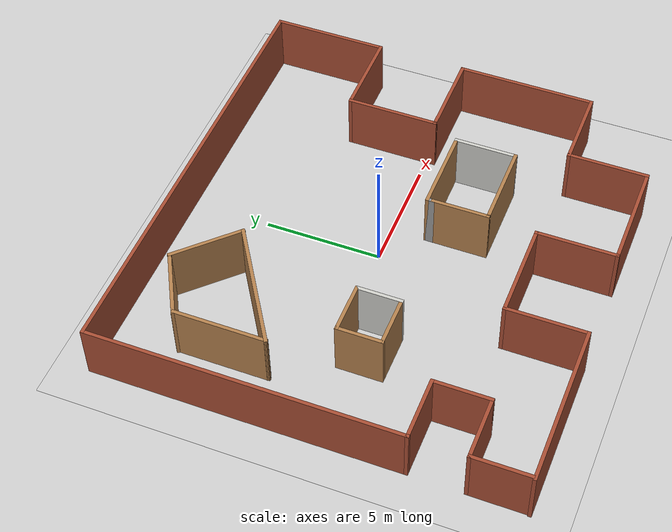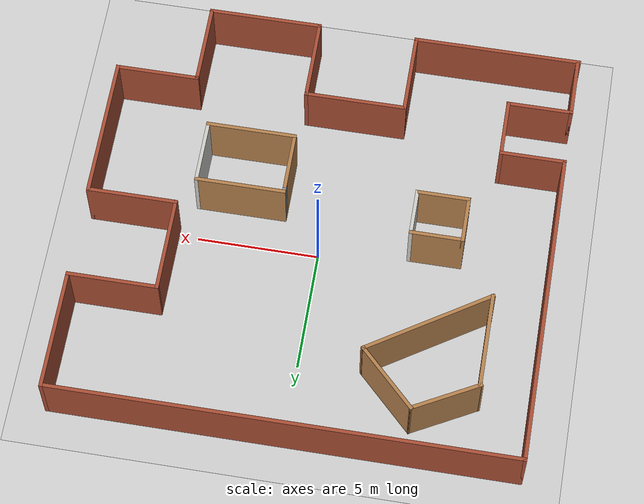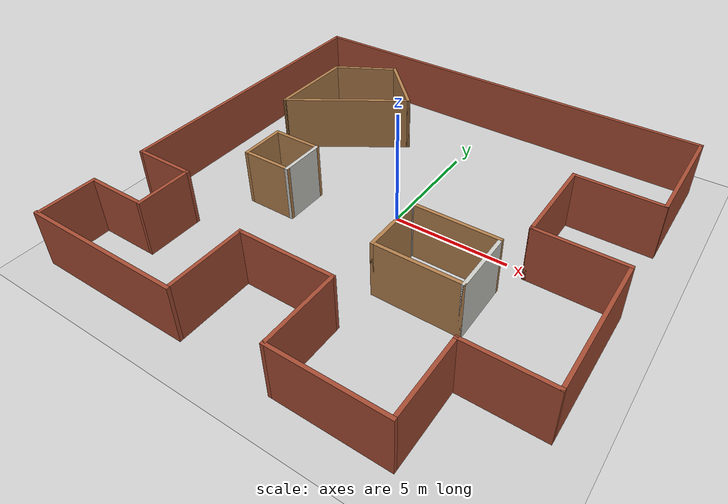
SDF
<sdf version="1.6">
 <world name="default">
  <light name="sun" type="directional">
   <pose>0 0 10 0 -0 0</pose>
   <diffuse>0.8 0.8 0.8 1</diffuse>
   <specular>0.2 0.2 0.2 1</specular>
   <attenuation>
    <range>1000</range>
    <constant>0.9</constant>
    <linear>0.01</linear>
    <quadratic>0.001</quadratic>
   </attenuation>
   <direction>-0.5 0.1 -0.9</direction>
  </light>
  <model name="ground_plane">
   <static>1</static>
   <link name="link">
    <collision name="collision">
     <geometry><plane><normal>0 0 1</normal><size>100 100</size></plane></geometry>
     <surface>
      <contact><collide_bitmask>65535</collide_bitmask></contact>
      <friction><ode><mu>100</mu><mu2>50</mu2></ode></friction>
     </surface>
    </collision>
    <visual name="visual">
     <cast_shadows>0</cast_shadows>
     <geometry><plane><normal>0 0 1</normal><size>100 100</size></plane></geometry>
     <material>
      <script><uri>file://media/materials/scripts/gazebo.material</uri><name>Gazebo/Grey</name></script>
     </material>
    </visual>
   </link>
  </model>
  <gravity>0 0 -9.8</gravity>
  <magnetic_field>6e-06 2.3e-05 -4.2e-05</magnetic_field>
  <atmosphere type="adiabatic"/>
  <physics name="default_physics" default="0" type="ode">
   <max_step_size>0.001</max_step_size>
   <real_time_factor>1</real_time_factor>
   <real_time_update_rate>1000</real_time_update_rate>
  </physics>
  <scene><ambient>0.4 0.4 0.4 1</ambient><background>0.7 0.7 0.7 1</background><shadows>1</shadows></scene>
  <spherical_coordinates>
   <surface_model>EARTH_WGS84</surface_model>
   <latitude_deg>0</latitude_deg>
   <longitude_deg>0</longitude_deg>
   <elevation>0</elevation>
   <heading_deg>0</heading_deg>
  </spherical_coordinates>
  <model name="Untitled">
   <pose>0.012255 -0.548863 0 0 -0 0</pose>
   <link name="Wall_0">
    <collision name="Wall_0_Collision">
     <geometry><box><size>2.5 0.15 2.5</size></box></geometry>
     <pose>0 0 1.25 0 -0 0</pose>
    </collision>
    <visual name="Wall_0_Visual">
     <pose>0 0 1.25 0 -0 0</pose>
     <geometry><box><size>2.5 0.15 2.5</size></box></geometry>
     <material>
      <script><uri>file://media/materials/scripts/gazebo.material</uri><name>Gazebo/Bricks</name></script>
      <ambient>1 1 1 1</ambient>
     </material>
     <meta><layer>0</layer></meta>
    </visual>
    <pose>-9.4 -7.675 0 0 0 -1.5708</pose>
   </link>
   <link name="Wall_10">
    <collision name="Wall_10_Collision">
     <geometry><box><size>4 0.15 2.5</size></box></geometry>
     <pose>0 0 1.25 0 -0 0</pose>
    </collision>
    <visual name="Wall_10_Visual">
     <pose>0 0 1.25 0 -0 0</pose>
     <geometry><box><size>4 0.15 2.5</size></box></geometry>
     <material>
      <script><uri>file://media/materials/scripts/gazebo.material</uri><name>Gazebo/Bricks</name></script>
      <ambient>1 1 1 1</ambient>
     </material>
     <meta><layer>0</layer></meta>
    </visual>
    <pose>5.85 2.175 0 0 0 -1.5708</pose>
   </link>
   <link name="Wall_11">
    <collision name="Wall_11_Collision">
     <geometry><box><size>3.75 0.15 2.5</size></box></geometry>
     <pose>0 0 1.25 0 -0 0</pose>
    </collision>
    <visual name="Wall_11_Visual">
     <pose>0 0 1.25 0 -0 0</pose>
     <geometry><box><size>3.75 0.15 2.5</size></box></geometry>
     <material>
      <script><uri>file://media/materials/scripts/gazebo.material</uri><name>Gazebo/Bricks</name></script>
      <ambient>1 1 1 1</ambient>
     </material>
     <meta><layer>0</layer></meta>
    </visual>
    <pose>7.65 0.25 0 0 -0 0</pose>
   </link>
   <link name="Wall_12">
    <collision name="Wall_12_Collision">
     <geometry><box><size>6 0.15 2.5</size></box></geometry>
     <pose>0 0 1.25 0 -0 0</pose>
    </collision>
    <visual name="Wall_12_Visual">
     <pose>0 0 1.25 0 -0 0</pose>
     <geometry><box><size>6 0.15 2.5</size></box></geometry>
     <material>
      <script><uri>file://media/materials/scripts/gazebo.material</uri><name>Gazebo/Bricks</name></script>
      <ambient>1 1 1 1</ambient>
     </material>
     <meta><layer>0</layer></meta>
    </visual>
    <pose>9.45 -2.675 0 0 0 -1.5708</pose>
   </link>
   <link name="Wall_13">
    <collision name="Wall_13_Collision">
     <geometry><box><size>3.5 0.15 2.5</size></box></geometry>
     <pose>0 0 1.25 0 -0 0</pose>
    </collision>
    <visual name="Wall_13_Visual">
     <pose>0 0 1.25 0 -0 0</pose>
     <geometry><box><size>3.5 0.15 2.5</size></box></geometry>
     <material>
      <script><uri>file://media/materials/scripts/gazebo.material</uri><name>Gazebo/Bricks</name></script>
      <ambient>1 1 1 1</ambient>
     </material>
     <meta><layer>0</layer></meta>
    </visual>
    <pose>7.775 -5.6 0 0 -0 3.14159</pose>
   </link>
   <link name="Wall_14">
    <collision name="Wall_14_Collision">
     <geometry><box><size>3.5 0.15 2.5</size></box></geometry>
     <pose>0 0 1.25 0 -0 0</pose>
    </collision>
    <visual name="Wall_14_Visual">
     <pose>0 0 1.25 0 -0 0</pose>
     <geometry><box><size>3.5 0.15 2.5</size></box></geometry>
     <material>
      <script><uri>file://media/materials/scripts/gazebo.material</uri><name>Gazebo/Bricks</name></script>
      <ambient>1 1 1 1</ambient>
     </material>
     <meta><layer>0</layer></meta>
    </visual>
    <pose>6.1 -7.275 0 0 0 -1.5708</pose>
   </link>
   <link name="Wall_15">
    <collision name="Wall_15_Collision">
     <geometry><box><size>4.75 0.15 2.5</size></box></geometry>
     <pose>0 0 1.25 0 -0 0</pose>
    </collision>
    <visual name="Wall_15_Visual">
     <pose>0 0 1.25 0 -0 0</pose>
     <geometry><box><size>4.75 0.15 2.5</size></box></geometry>
     <material>
      <script><uri>file://media/materials/scripts/gazebo.material</uri><name>Gazebo/Bricks</name></script>
      <ambient>1 1 1 1</ambient>
     </material>
     <meta><layer>0</layer></meta>
    </visual>
    <pose>3.8 -8.95 0 0 -0 3.14159</pose>
   </link>
   <link name="Wall_16">
    <collision name="Wall_16_Collision">
     <geometry><box><size>3.5 0.15 2.5</size></box></geometry>
     <pose>0 0 1.25 0 -0 0</pose>
    </collision>
    <visual name="Wall_16_Visual">
     <pose>0 0 1.25 0 -0 0</pose>
     <geometry><box><size>3.5 0.15 2.5</size></box></geometry>
     <material>
      <script><uri>file://media/materials/scripts/gazebo.material</uri><name>Gazebo/Bricks</name></script>
      <ambient>1 1 1 1</ambient>
     </material>
     <meta><layer>0</layer></meta>
    </visual>
    <pose>1.5 -7.275 0 0 -0 1.5708</pose>
   </link>
   <link name="Wall_17">
    <collision name="Wall_17_Collision">
     <geometry><box><size>4.25 0.15 2.5</size></box></geometry>
     <pose>0 0 1.25 0 -0 0</pose>
    </collision>
    <visual name="Wall_17_Visual">
     <pose>0 0 1.25 0 -0 0</pose>
     <geometry><box><size>4.25 0.15 2.5</size></box></geometry>
     <material>
      <script><uri>file://media/materials/scripts/gazebo.material</uri><name>Gazebo/Bricks</name></script>
      <ambient>1 1 1 1</ambient>
     </material>
     <meta><layer>0</layer></meta>
    </visual>
    <pose>-0.55 -5.6 0 0 -0 3.14159</pose>
   </link>
   <link name="Wall_18">
    <collision name="Wall_18_Collision">
     <geometry><box><size>3.5 0.15 2.5</size></box></geometry>
     <pose>0 0 1.25 0 -0 0</pose>
    </collision>
    <visual name="Wall_18_Visual">
     <pose>0 0 1.25 0 -0 0</pose>
     <geometry><box><size>3.5 0.15 2.5</size></box></geometry>
     <material>
      <script><uri>file://media/materials/scripts/gazebo.material</uri><name>Gazebo/Bricks</name></script>
      <ambient>1 1 1 1</ambient>
     </material>
     <meta><layer>0</layer></meta>
    </visual>
    <pose>-2.6 -7.275 0 0 0 -1.5708</pose>
   </link>
   <link name="Wall_19">
    <collision name="Wall_19_Collision">
     <geometry><box><size>7 0.15 2.5</size></box></geometry>
     <pose>0 0 1.25 0 -0 0</pose>
    </collision>
    <visual name="Wall_19_Visual">
     <pose>0 0 1.25 0 -0 0</pose>
     <geometry><box><size>7 0.15 2.5</size></box></geometry>
     <material>
      <script><uri>file://media/materials/scripts/gazebo.material</uri><name>Gazebo/Bricks</name></script>
      <ambient>1 1 1 1</ambient>
     </material>
     <meta><layer>0</layer></meta>
    </visual>
    <pose>-6.025 -8.95 0 0 -0 3.14159</pose>
   </link>
   <link name="Wall_21">
    <collision name="Wall_21_Collision">
     <geometry><box><size>3.04662 0.15 2.5</size></box></geometry>
     <pose>0 0 1.25 0 -0 0</pose>
    </collision>
    <visual name="Wall_21_Visual">
     <pose>0 0 1.25 0 -0 0</pose>
     <geometry><box><size>3.04662 0.15 2.5</size></box></geometry>
     <material>
      <script><uri>file://media/materials/scripts/gazebo.material</uri><name>Gazebo/Wood</name></script>
      <ambient>1 1 1 1</ambient>
     </material>
     <meta><layer>0</layer></meta>
    </visual>
    <pose>-6.06708 6.86252 0 0 -0 0.498069</pose>
   </link>
   <link name="Wall_22">
    <collision name="Wall_22_Collision">
     <geometry><box><size>3.25 0.15 2.5</size></box></geometry>
     <pose>0 0 1.25 0 -0 0</pose>
    </collision>
    <visual name="Wall_22_Visual">
     <pose>0 0 1.25 0 -0 0</pose>
     <geometry><box><size>3.25 0.15 2.5</size></box></geometry>
     <material>
      <script><uri>file://media/materials/scripts/gazebo.material</uri><name>Gazebo/Wood</name></script>
      <ambient>1 1 1 1</ambient>
     </material>
     <meta><layer>0</layer></meta>
    </visual>
    <pose>-3.69871 6.45841 0 0 0 -0.785398</pose>
   </link>
   <link name="Wall_23">
    <collision name="Wall_23_Collision">
     <geometry><box><size>5.74973 0.15 2.5</size></box></geometry>
     <pose>0 0 1.25 0 -0 0</pose>
    </collision>
    <visual name="Wall_23_Visual">
     <pose>0 0 1.25 0 -0 0</pose>
     <geometry><box><size>5.74973 0.15 2.5</size></box></geometry>
     <material>
      <script><uri>file://media/materials/scripts/gazebo.material</uri><name>Gazebo/Wood</name></script>
      <ambient>1 1 1 1</ambient>
     </material>
     <meta><layer>0</layer></meta>
    </visual>
    <pose>-4.95348 3.84151 0 0 0 -2.56735</pose>
   </link>
   <link name="Wall_24">
    <collision name="Wall_24_Collision">
     <geometry><box><size>4 0.15 2.5</size></box></geometry>
     <pose>0 0 1.25 0 -0 0</pose>
    </collision>
    <visual name="Wall_24_Visual">
     <pose>0 0 1.25 0 -0 0</pose>
     <geometry><box><size>4 0.15 2.5</size></box></geometry>
     <material>
      <script><uri>file://media/materials/scripts/gazebo.material</uri><name>Gazebo/Wood</name></script>
      <ambient>1 1 1 1</ambient>
     </material>
     <meta><layer>0</layer></meta>
    </visual>
    <pose>-7.30425 4.24562 0 0 -0 1.5708</pose>
   </link>
   <link name="Wall_26">
    <collision name="Wall_26_Collision">
     <geometry><box><size>2.5 0.15 2.5</size></box></geometry>
     <pose>0 0 1.25 0 -0 0</pose>
    </collision>
    <visual name="Wall_26_Visual">
     <pose>0 0 1.25 0 -0 0</pose>
     <geometry><box><size>2.5 0.15 2.5</size></box></geometry>
     <material>
      <script><uri>file://media/materials/scripts/gazebo.material</uri><name>Gazebo/Wood</name></script>
      <ambient>1 1 1 1</ambient>
     </material>
     <meta><layer>0</layer></meta>
    </visual>
    <pose>1.63115 -2.35674 0 0 0 -1.5708</pose>
   </link>
   <link name="Wall_27">
    <collision name="Wall_27_Collision">
     <geometry><box><size>3.75 0.15 2.5</size></box></geometry>
     <pose>0 0 1.25 0 -0 0</pose>
    </collision>
    <visual name="Wall_27_Visual">
     <pose>0 0 1.25 0 -0 0</pose>
     <geometry><box><size>3.75 0.15 2.5</size></box></geometry>
     <material>
      <script><uri>file://media/materials/scripts/gazebo.material</uri><name>Gazebo/Wood</name></script>
      <ambient>1 1 1 1</ambient>
     </material>
     <meta><layer>0</layer></meta>
    </visual>
    <pose>3.43115 -3.53174 0 0 -0 0</pose>
   </link>
   <link name="Wall_28">
    <collision name="Wall_28_Collision">
     <geometry><box><size>2.75 0.15 2.5</size></box></geometry>
     <pose>0 0 1.25 0 -0 0</pose>
    </collision>
    <visual name="Wall_28_Visual">
     <pose>0 0 1.25 0 -0 0</pose>
     <geometry><box><size>2.75 0.15 2.5</size></box></geometry>
     <material>
      <script><uri>file://media/materials/scripts/gazebo.material</uri><name>Gazebo/CeilingTiled</name></script>
      <ambient>1 1 1 1</ambient>
     </material>
     <meta><layer>0</layer></meta>
    </visual>
    <pose>5.23115 -2.23174 0 0 -0 1.5708</pose>
   </link>
   <link name="Wall_29">
    <collision name="Wall_29_Collision">
     <geometry><box><size>3.75 0.15 2.5</size></box></geometry>
     <pose>0 0 1.25 0 -0 0</pose>
    </collision>
    <visual name="Wall_29_Visual">
     <pose>0 0 1.25 0 -0 0</pose>
     <geometry><box><size>3.75 0.15 2.5</size></box></geometry>
     <material>
      <script><uri>file://media/materials/scripts/gazebo.material</uri><name>Gazebo/Wood</name></script>
      <ambient>1 1 1 1</ambient>
     </material>
     <meta><layer>0</layer></meta>
    </visual>
    <pose>3.43115 -0.931741 0 0 -0 3.14159</pose>
   </link>
   <link name="Wall_3">
    <collision name="Wall_3_Collision">
     <geometry><box><size>2.75 0.15 2.5</size></box></geometry>
     <pose>0 0 1.25 0 -0 0</pose>
    </collision>
    <visual name="Wall_3_Visual">
     <pose>0 0 1.25 0 -0 0</pose>
     <geometry><box><size>2.75 0.15 2.5</size></box></geometry>
     <material>
      <script><uri>file://media/materials/scripts/gazebo.material</uri><name>Gazebo/Bricks</name></script>
      <ambient>1 1 1 1</ambient>
     </material>
     <meta><layer>0</layer></meta>
    </visual>
    <pose>-8.1 -6.5 0 0 -0 0</pose>
   </link>
   <link name="Wall_30">
    <collision name="Wall_30_Collision">
     <geometry><box><size>0.4 0.15 2.5</size></box></geometry>
     <pose>0 0 1.25 0 -0 0</pose>
    </collision>
    <visual name="Wall_30_Visual">
     <pose>0 0 1.25 0 -0 0</pose>
     <geometry><box><size>0.4 0.15 2.5</size></box></geometry>
     <material>
      <script><uri>file://media/materials/scripts/gazebo.material</uri><name>Gazebo/Grey</name></script>
      <ambient>1 1 1 1</ambient>
     </material>
     <meta><layer>0</layer></meta>
    </visual>
    <pose>1.63115 -1.05674 0 0 0 -1.5708</pose>
   </link>
   <link name="Wall_32">
    <collision name="Wall_32_Collision">
     <geometry><box><size>2 0.15 2.5</size></box></geometry>
     <pose>0 0 1.25 0 -0 0</pose>
    </collision>
    <visual name="Wall_32_Visual">
     <pose>0 0 1.25 0 -0 0</pose>
     <geometry><box><size>2 0.15 2.5</size></box></geometry>
     <material>
      <script><uri>file://media/materials/scripts/gazebo.material</uri><name>Gazebo/Wood</name></script>
      <ambient>1 1 1 1</ambient>
     </material>
     <meta><layer>0</layer></meta>
    </visual>
    <pose>-5.79157 -0.875484 0 0 0 -1.5708</pose>
   </link>
   <link name="Wall_33">
    <collision name="Wall_33_Collision">
     <geometry><box><size>2.25 0.15 2.5</size></box></geometry>
     <pose>0 0 1.25 0 -0 0</pose>
    </collision>
    <visual name="Wall_33_Visual">
     <pose>0 0 1.25 0 -0 0</pose>
     <geometry><box><size>2.25 0.15 2.5</size></box></geometry>
     <material>
      <script><uri>file://media/materials/scripts/gazebo.material</uri><name>Gazebo/Wood</name></script>
      <ambient>1 1 1 1</ambient>
     </material>
     <meta><layer>0</layer></meta>
    </visual>
    <pose>-4.74156 -1.80048 0 0 -0 0</pose>
   </link>
   <link name="Wall_34">
    <collision name="Wall_34_Collision">
     <geometry><box><size>2 0.15 2.5</size></box></geometry>
     <pose>0 0 1.25 0 -0 0</pose>
    </collision>
    <visual name="Wall_34_Visual">
     <pose>0 0 1.25 0 -0 0</pose>
     <geometry><box><size>2 0.15 2.5</size></box></geometry>
     <material>
      <script><uri>file://media/materials/scripts/gazebo.material</uri><name>Gazebo/CeilingTiled</name></script>
      <ambient>1 1 1 1</ambient>
     </material>
     <meta><layer>0</layer></meta>
    </visual>
    <pose>-3.69157 -0.875484 0 0 -0 1.5708</pose>
   </link>
   <link name="Wall_35">
    <collision name="Wall_35_Collision">
     <geometry><box><size>2.25 0.15 2.5</size></box></geometry>
     <pose>0 0 1.25 0 -0 0</pose>
    </collision>
    <visual name="Wall_35_Visual">
     <pose>0 0 1.25 0 -0 0</pose>
     <geometry><box><size>2.25 0.15 2.5</size></box></geometry>
     <material>
      <script><uri>file://media/materials/scripts/gazebo.material</uri><name>Gazebo/Wood</name></script>
      <ambient>1 1 1 1</ambient>
     </material>
     <meta><layer>0</layer></meta>
    </visual>
    <pose>-4.74156 0.049516 0 0 -0 3.14159</pose>
   </link>
   <link name="Wall_4">
    <collision name="Wall_4_Collision">
     <geometry><box><size>2.5 0.15 2.5</size></box></geometry>
     <pose>0 0 1.25 0 -0 0</pose>
    </collision>
    <visual name="Wall_4_Visual">
     <pose>0 0 1.25 0 -0 0</pose>
     <geometry><box><size>2.5 0.15 2.5</size></box></geometry>
     <material>
      <script><uri>file://media/materials/scripts/gazebo.material</uri><name>Gazebo/Bricks</name></script>
      <ambient>1 1 1 1</ambient>
     </material>
     <meta><layer>0</layer></meta>
    </visual>
    <pose>-6.8 -5.325 0 0 -0 1.5708</pose>
   </link>
   <link name="Wall_5">
    <collision name="Wall_5_Collision">
     <geometry><box><size>2.75 0.15 2.5</size></box></geometry>
     <pose>0 0 1.25 0 -0 0</pose>
    </collision>
    <visual name="Wall_5_Visual">
     <pose>0 0 1.25 0 -0 0</pose>
     <geometry><box><size>2.75 0.15 2.5</size></box></geometry>
     <material>
      <script><uri>file://media/materials/scripts/gazebo.material</uri><name>Gazebo/Bricks</name></script>
      <ambient>1 1 1 1</ambient>
     </material>
     <meta><layer>0</layer></meta>
    </visual>
    <pose>-8.1 -4.15 0 0 -0 3.14159</pose>
   </link>
   <link name="Wall_6">
    <collision name="Wall_6_Collision">
     <geometry><box><size>13.25 0.15 2.5</size></box></geometry>
     <pose>0 0 1.25 0 -0 0</pose>
    </collision>
    <visual name="Wall_6_Visual">
     <pose>0 0 1.25 0 -0 0</pose>
     <geometry><box><size>13.25 0.15 2.5</size></box></geometry>
     <material>
      <script><uri>file://media/materials/scripts/gazebo.material</uri><name>Gazebo/Bricks</name></script>
      <ambient>1 1 1 1</ambient>
     </material>
     <meta><layer>0</layer></meta>
    </visual>
    <pose>-9.4 2.4 0 0 -0 1.5708</pose>
   </link>
   <link name="Wall_7">
    <collision name="Wall_7_Collision">
     <geometry><box><size>19 0.15 2.5</size></box></geometry>
     <pose>0 0 1.25 0 -0 0</pose>
    </collision>
    <visual name="Wall_7_Visual">
     <pose>0 0 1.25 0 -0 0</pose>
     <geometry><box><size>19 0.15 2.5</size></box></geometry>
     <material>
      <script><uri>file://media/materials/scripts/gazebo.material</uri><name>Gazebo/Bricks</name></script>
      <ambient>1 1 1 1</ambient>
     </material>
     <meta><layer>0</layer></meta>
    </visual>
    <pose>0.025 8.95 0 0 -0 0</pose>
   </link>
   <link name="Wall_8">
    <collision name="Wall_8_Collision">
     <geometry><box><size>5 0.15 2.5</size></box></geometry>
     <pose>0 0 1.25 0 -0 0</pose>
    </collision>
    <visual name="Wall_8_Visual">
     <pose>0 0 1.25 0 -0 0</pose>
     <geometry><box><size>5 0.15 2.5</size></box></geometry>
     <material>
      <script><uri>file://media/materials/scripts/gazebo.material</uri><name>Gazebo/Bricks</name></script>
      <ambient>1 1 1 1</ambient>
     </material>
     <meta><layer>0</layer></meta>
    </visual>
    <pose>9.45 6.525 0 0 0 -1.5708</pose>
   </link>
   <link name="Wall_9">
    <collision name="Wall_9_Collision">
     <geometry><box><size>3.75 0.15 2.5</size></box></geometry>
     <pose>0 0 1.25 0 -0 0</pose>
    </collision>
    <visual name="Wall_9_Visual">
     <pose>0 0 1.25 0 -0 0</pose>
     <geometry><box><size>3.75 0.15 2.5</size></box></geometry>
     <material>
      <script><uri>file://media/materials/scripts/gazebo.material</uri><name>Gazebo/Bricks</name></script>
      <ambient>1 1 1 1</ambient>
     </material>
     <meta><layer>0</layer></meta>
    </visual>
    <pose>7.65 4.1 0 0 -0 3.14159</pose>
   </link>
   <static>1</static>
  </model>
 </world>
</sdf>
